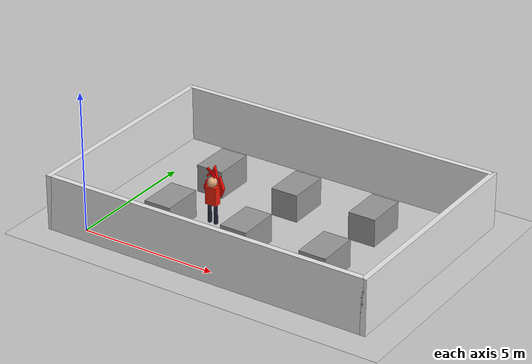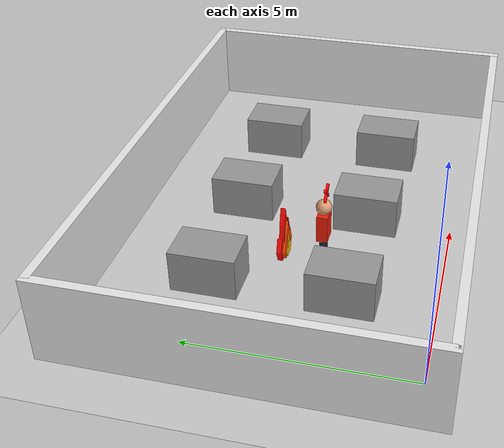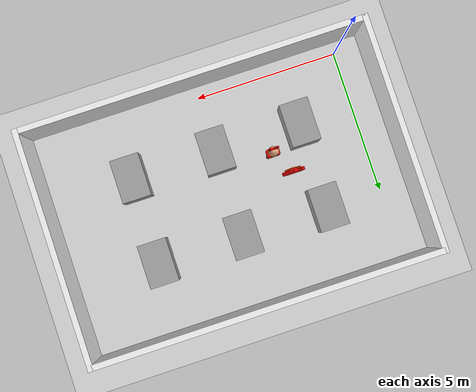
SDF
<?xml version="1.0" ?>
<sdf version="1.6">
  <world name="digital_twin_1">
    <!-- Gazebo 모델 좌표를 ROS2 /gazebo/model_states 로 발행한다.
         event_detector.py의 mock 화재/안전모 위반 판정이 이 토픽을 사용한다. -->
    <plugin name="gazebo_ros_state" filename="libgazebo_ros_state.so">
      <ros><namespace>/gazebo</namespace></ros>
      <update_rate>10.0</update_rate>
    </plugin>
    <!-- Scene settings -->
    <scene>
      <ambient>0.4 0.4 0.4 1</ambient>
      <background>0.7 0.7 0.7 1</background>
      <shadows>true</shadows>
    </scene>

    <!-- Sun -->
    <include>
      <uri>model://sun</uri>
    </include>

    <!-- Ground Plane -->
    <include>
      <uri>model://ground_plane</uri>
    </include>

    <!-- Boundary Walls -->
    <model name="wall_n">
      <pose>5 7.5 1 0 0 0</pose>
      <static>true</static>
      <link name="link">
        <collision name="collision"><geometry><box><size>12 0.2 2</size></box></geometry></collision>
        <visual name="visual"><geometry><box><size>12 0.2 2</size></box></geometry><material><script><uri>file://media/materials/scripts/gazebo.material</uri><name>Gazebo/White</name></script></material></visual>
      </link>
    </model>
    <model name="wall_s">
      <pose>5 -0.5 1 0 0 0</pose>
      <static>true</static>
      <link name="link">
        <collision name="collision"><geometry><box><size>12 0.2 2</size></box></geometry></collision>
        <visual name="visual"><geometry><box><size>12 0.2 2</size></box></geometry><material><script><uri>file://media/materials/scripts/gazebo.material</uri><name>Gazebo/White</name></script></material></visual>
      </link>
    </model>
    <model name="wall_w">
      <pose>-1 3.5 1 0 0 0</pose>
      <static>true</static>
      <link name="link">
        <collision name="collision"><geometry><box><size>0.2 8.2 2</size></box></geometry></collision>
        <visual name="visual"><geometry><box><size>0.2 8.2 2</size></box></geometry><material><script><uri>file://media/materials/scripts/gazebo.material</uri><name>Gazebo/White</name></script></material></visual>
      </link>
    </model>
    <model name="wall_e">
      <pose>11 3.5 1 0 0 0</pose>
      <static>true</static>
      <link name="link">
        <collision name="collision"><geometry><box><size>0.2 8.2 2</size></box></geometry></collision>
        <visual name="visual"><geometry><box><size>0.2 8.2 2</size></box></geometry><material><script><uri>file://media/materials/scripts/gazebo.material</uri><name>Gazebo/White</name></script></material></visual>
      </link>
    </model>

    <!-- 6 Factory Racks / Obstacles -->
    <model name="rack_1">
      <pose>2 2 0.5 0 0 0</pose>
      <static>true</static>
      <link name="link">
        <collision name="collision"><geometry><box><size>1 1.5 1</size></box></geometry></collision>
        <visual name="visual"><geometry><box><size>1 1.5 1</size></box></geometry><material><script><uri>file://media/materials/scripts/gazebo.material</uri><name>Gazebo/Grey</name></script></material></visual>
      </link>
    </model>

    <model name="rack_2">
      <pose>2 5 0.5 0 0 0</pose>
      <static>true</static>
      <link name="link">
        <collision name="collision"><geometry><box><size>1 1.5 1</size></box></geometry></collision>
        <visual name="visual"><geometry><box><size>1 1.5 1</size></box></geometry><material><script><uri>file://media/materials/scripts/gazebo.material</uri><name>Gazebo/Grey</name></script></material></visual>
      </link>
    </model>

    <model name="rack_3">
      <pose>5 2 0.5 0 0 0</pose>
      <static>true</static>
      <link name="link">
        <collision name="collision"><geometry><box><size>1 1.5 1</size></box></geometry></collision>
        <visual name="visual"><geometry><box><size>1 1.5 1</size></box></geometry><material><script><uri>file://media/materials/scripts/gazebo.material</uri><name>Gazebo/Grey</name></script></material></visual>
      </link>
    </model>

    <model name="rack_4">
      <pose>5 5 0.5 0 0 0</pose>
      <static>true</static>
      <link name="link">
        <collision name="collision"><geometry><box><size>1 1.5 1</size></box></geometry></collision>
        <visual name="visual"><geometry><box><size>1 1.5 1</size></box></geometry><material><script><uri>file://media/materials/scripts/gazebo.material</uri><name>Gazebo/Grey</name></script></material></visual>
      </link>
    </model>

    <model name="rack_5">
      <pose>8 2 0.5 0 0 0</pose>
      <static>true</static>
      <link name="link">
        <collision name="collision"><geometry><box><size>1 1.5 1</size></box></geometry></collision>
        <visual name="visual"><geometry><box><size>1 1.5 1</size></box></geometry><material><script><uri>file://media/materials/scripts/gazebo.material</uri><name>Gazebo/Grey</name></script></material></visual>
      </link>
    </model>

    <model name="rack_6">
      <pose>8 5 0.5 0 0 0</pose>
      <static>true</static>
      <link name="link">
        <collision name="collision"><geometry><box><size>1 1.5 1</size></box></geometry></collision>
        <visual name="visual"><geometry><box><size>1 1.5 1</size></box></geometry><material><script><uri>file://media/materials/scripts/gazebo.material</uri><name>Gazebo/Grey</name></script></material></visual>
      </link>
    </model>

    <!-- 순찰 시작점에서 카메라에 보이는 mock 안전 이벤트.
         지도 생성기는 event_target 이름을 제외하므로 Nav2 정적 지도와는 분리된다. -->
    <model name="fire_event_target">
      <pose>2.7 3.5 0.5 0 0 0</pose>
      <static>true</static>
      <include><uri>model://fire_event</uri></include>
    </model>

    <model name="helmet_violation_event_target">
      <pose>3.2 2.7 0.0 0 0 0</pose>
      <static>true</static>
      <include><uri>model://helmet_violation_event</uri></include>
    </model>

    <!-- Setup Robot start pose logic is handled by spawn_entity.py but define view -->
    <gui fullscreen='0'>
      <camera name='user_camera'>
        <pose>5 -5 10 0 0.8 1.57</pose>
        <view_controller>orbit</view_controller>
      </camera>
    </gui>
  </world>
</sdf>

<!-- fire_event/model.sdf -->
<sdf version="1.6">
  <model name="fire_event">
    <static>true</static>
    <link name="flame">
      <!-- Visual-only: a detected fire must not become a physical obstacle. -->
      <visual name="outer_red_flame">
        <geometry><mesh><uri>model://fire_event/meshes/flame.obj</uri><scale>0.9 0.9 0.9</scale></mesh></geometry>
        <material><ambient>1 0.03 0.01 1</ambient><diffuse>1 0.03 0.01 1</diffuse><emissive>0.9 0.02 0 1</emissive></material>
      </visual>
      <visual name="middle_orange_flame">
        <pose>0 -0.075 0.02 0 0 0</pose>
        <geometry><mesh><uri>model://fire_event/meshes/flame.obj</uri><scale>0.65 0.65 0.65</scale></mesh></geometry>
        <material><ambient>1 0.28 0 1</ambient><diffuse>1 0.28 0 1</diffuse><emissive>1 0.2 0 1</emissive></material>
      </visual>
      <visual name="inner_yellow_flame">
        <pose>0 -0.11 0.02 0 0 0</pose>
        <geometry><mesh><uri>model://fire_event/meshes/flame.obj</uri><scale>0.38 0.38 0.38</scale></mesh></geometry>
        <material><ambient>1 0.75 0.02 1</ambient><diffuse>1 0.75 0.02 1</diffuse><emissive>1 0.65 0 1</emissive></material>
      </visual>
    </link>
  </model>
</sdf>

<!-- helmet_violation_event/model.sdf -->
<sdf version="1.6">
  <model name="helmet_violation_event">
    <static>true</static>
    <link name="worker_no_helmet">
      <!-- Red body + bare head + red X: helmet violation. -->
      <visual name="torso">
        <pose>0 0 1.05 0 0 0</pose>
        <geometry><box><size>0.42 0.25 0.65</size></box></geometry>
        <material><ambient>0.95 0.12 0.03 1</ambient><diffuse>0.95 0.12 0.03 1</diffuse></material>
      </visual>
      <visual name="head">
        <pose>0 0 1.53 0 0 0</pose>
        <geometry><sphere><radius>0.18</radius></sphere></geometry>
        <material><ambient>0.86 0.62 0.46 1</ambient><diffuse>0.86 0.62 0.46 1</diffuse></material>
      </visual>
      <visual name="left_leg">
        <pose>-0.12 0 0.42 0 0 0</pose>
        <geometry><cylinder><radius>0.07</radius><length>0.8</length></cylinder></geometry>
        <material><ambient>0.1 0.12 0.18 1</ambient><diffuse>0.1 0.12 0.18 1</diffuse></material>
      </visual>
      <visual name="right_leg">
        <pose>0.12 0 0.42 0 0 0</pose>
        <geometry><cylinder><radius>0.07</radius><length>0.8</length></cylinder></geometry>
        <material><ambient>0.1 0.12 0.18 1</ambient><diffuse>0.1 0.12 0.18 1</diffuse></material>
      </visual>
      <visual name="no_helmet_x1">
        <pose>0 -0.05 1.9 0 0.78 0</pose>
        <geometry><box><size>0.42 0.06 0.06</size></box></geometry>
        <material><ambient>1 0 0 1</ambient><diffuse>1 0 0 1</diffuse><emissive>0.6 0 0 1</emissive></material>
      </visual>
      <visual name="no_helmet_x2">
        <pose>0 -0.05 1.9 0 -0.78 0</pose>
        <geometry><box><size>0.42 0.06 0.06</size></box></geometry>
        <material><ambient>1 0 0 1</ambient><diffuse>1 0 0 1</diffuse><emissive>0.6 0 0 1</emissive></material>
      </visual>
    </link>
  </model>
</sdf>
